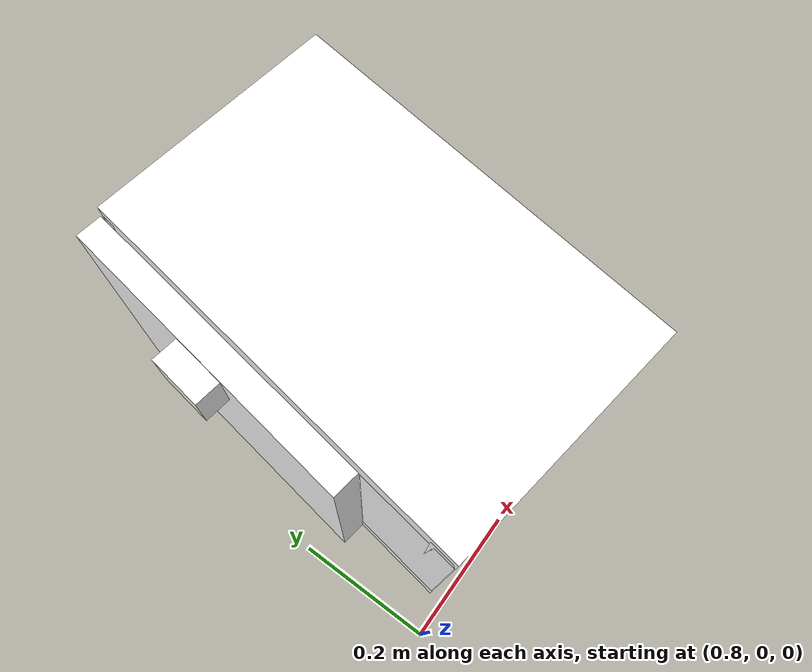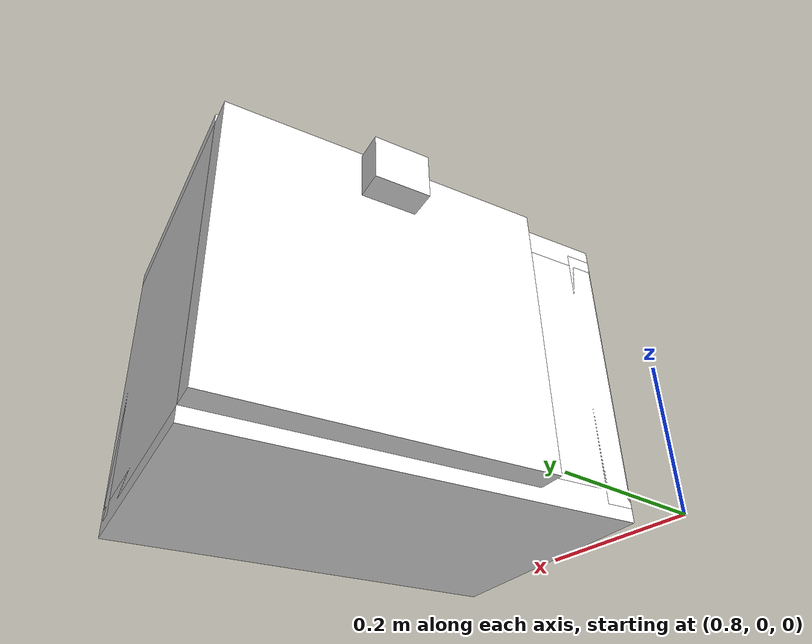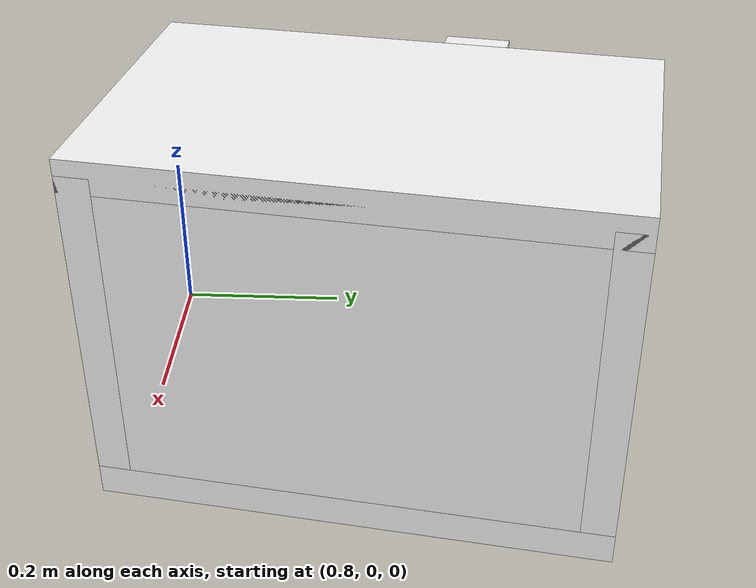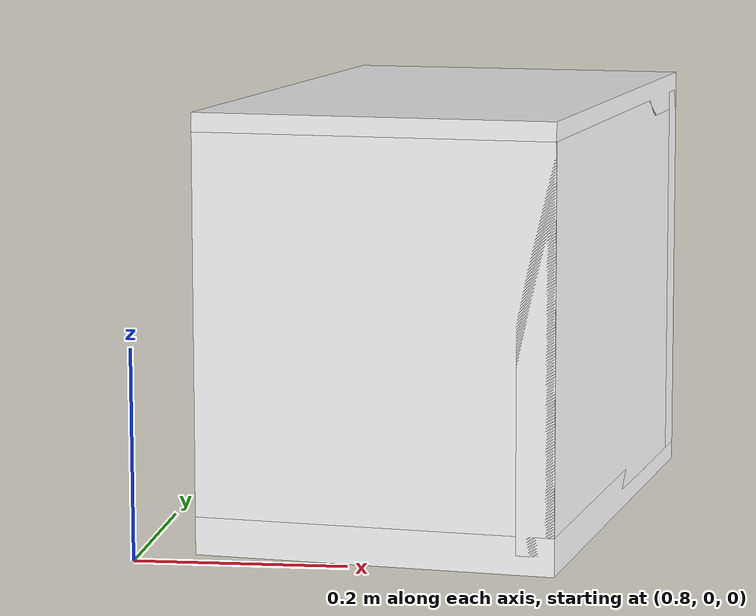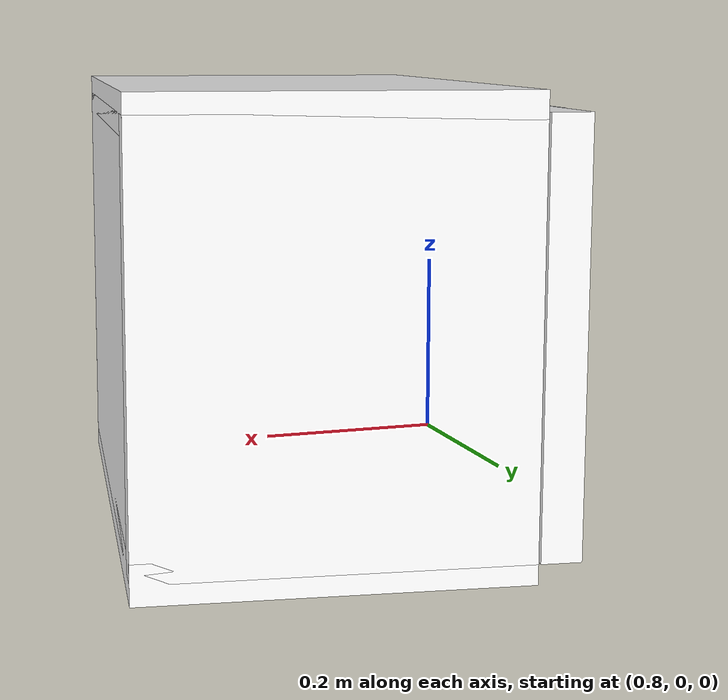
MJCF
<mujoco model="cabinet">
    <compiler angle="radian" eulerseq='zxy' />
    <option gravity = "0 0 0" />
    <option>
        <flag contact = "disable"/>
    </option>
    <statistic	extent="1.0" center="0.0 0.0 0.0"/>
    <visual>
        <map fogstart="3" fogend="5" force="0.1" znear=" 0.100000 " zfar=" 12.000000 "/>
    </visual>
    <size njmax="500" nconmax="100" />
    <actuator>
        <velocity joint="bottom_left_hinge" name="viva_revolution" kv='10'></velocity>
    </actuator>
    <asset>
        <texture builtin="flat" name="tabletex" height="32" width="32" rgb1="1 1 1" type="cube"></texture>
        <texture builtin="flat" name="objtex" height="32" width="32" rgb1="1 1 1" type="cube"></texture>
        <texture builtin="flat" name="handletex" height="32" width="32" rgb1="1 1 1" type="cube"></texture>
        <texture builtin="flat" name="wallpaper" height="32" width="32" rgb1="1 1 1" type="cube"></texture>
        <texture builtin="flat" name="kp" height="32" width="32" rgb1="1 1 1" type="cube"></texture>
        <material name="geomTable" shininess="0.03" specular="0.75" texture="tabletex"></material>
        <material name="geomObj" shininess="0.03" specular="0.75" texture="objtex"></material>
        <material name="geomHandle" shininess="0.03" specular="0.75" texture="handletex"></material>
        <material name="bg" shininess="0.03" specular="0.75" texture="wallpaper"></material>
        <material name="geomKeypad" shininess="0.03" specular="0.75" texture="kp"></material>
    </asset>
    <worldbody>
        <body name="cabinet_bottom" pos= " 1.064722 0.272478 0.020240 "  quat= " 0.073791 0.000000 0.000000 0.997274" >
            <inertial pos="0 0 0" mass="1" diaginertia="1 1 1" />
            <geom size= " 0.171414 0.279259 0.017999 "  type="box" material="geomObj" name="b"/>
            <body name="cabinet_left" pos= " 0.000000 -0.261260 0.188961 " >
                <inertial pos="0 0 0" mass="1" diaginertia="1 1 1" />
                <geom size= " 0.171414 0.017999 0.188961 "  type="box" material="geomObj" name="c" />
            </body>
            <body name="cabinet_right" pos= " 0.000000 0.261260 0.188961 " >
                <inertial pos="0 0 0" mass="1" diaginertia="1 1 1" />
                <geom size= " 0.171414 0.017999 0.188961 "  type="box" material="geomObj" name="d" />
            </body>
            <body name="cabinet_top" pos= " 0.000000 0.000000 0.377922 " >
                <inertial pos="0 0 0" mass="1" diaginertia="1 1 1" />
                <geom size= " 0.171414 0.279259 0.017999 "  type="box" material="geomObj" name="e"/>
            </body>
            <body name="cabinet_back" pos= " -0.153415 0.000000 0.188961 "  >
                <inertial pos="0 0 0" mass="1" diaginertia="1 1 1" />
                <geom size= " 0.017999 0.279259 0.188961 "  type="box" material="geomObj" name="f" />
            </body>
            <body name="cabinet_keypad" pos= " 0.017999 0.210341 0.188961 " >
                <inertial pos="0 0 0" mass="1" diaginertia="1 1 1" />
                <geom size= " 0.153415 0.067917 0.170962 "  type="box" material="geomKeypad" name="keypizzlemynizzle" />
            </body>
            <body name="cabinet_left_hinge" pos= " 0.171414 -0.067917 0.000000 " >
                <inertial pos= " 0.020000 0.000000 0.188961 "  mass="1" diaginertia="1 1 1" />
                <joint name="bottom_left_hinge" type="hinge" pos="0 0 0" axis="0 1 0" limited="true" range= "0 2.3"  />
                <geom size= " 0.017999 0.211341 0.188961 "  pos= " 0.020000 0.000000 0.188961 "  type="box" material="geomObj" name="g"/>
                <body name="handle_link" pos= " 0.042853 0.000000 0.341924 " >
                    <inertial pos="0 0 0" mass="1" diaginertia="1 1 1" />
                    <geom size= " 0.030190 0.036240 0.031869 "  type="box" material="geomHandle" name="h"/>
                </body>
            </body>
        </body>
        <body name="external_camera_body_0" pos="0.0 0 0.00">
            <camera euler="-1.57 1.57 0.0" fovy=" 54.280851 " name="external_camera_0" pos="0.0 0 0"></camera>
            <inertial pos= " 0.00 0.0 0.000000 " mass="1" diaginertia="1 1 1" />
            <joint name="cam_j" pos="0.0 0 0" axis = "1 0 0" type="free" />
        </body>
    </worldbody>
</mujoco>
